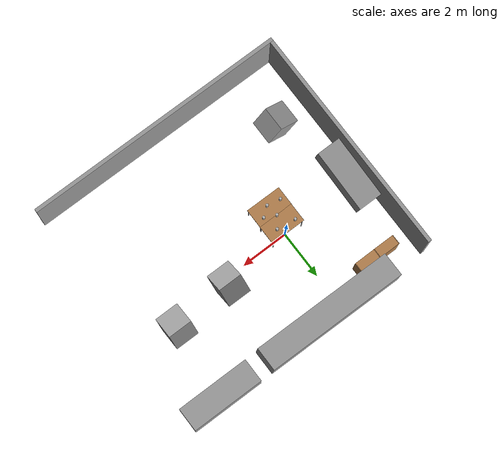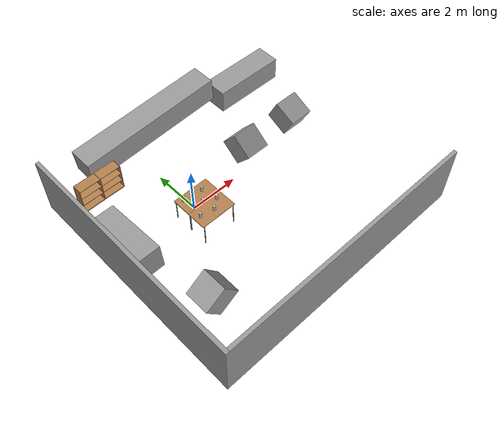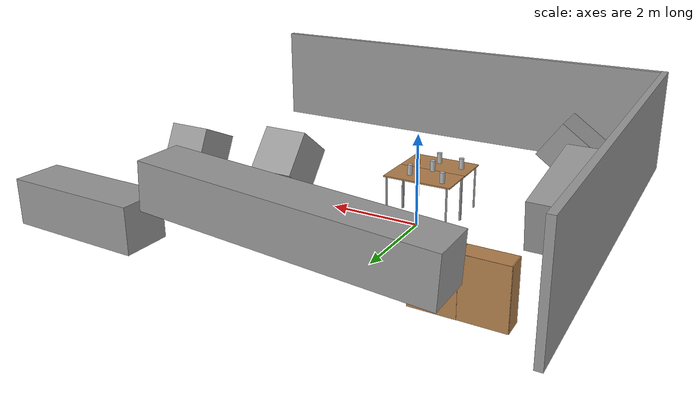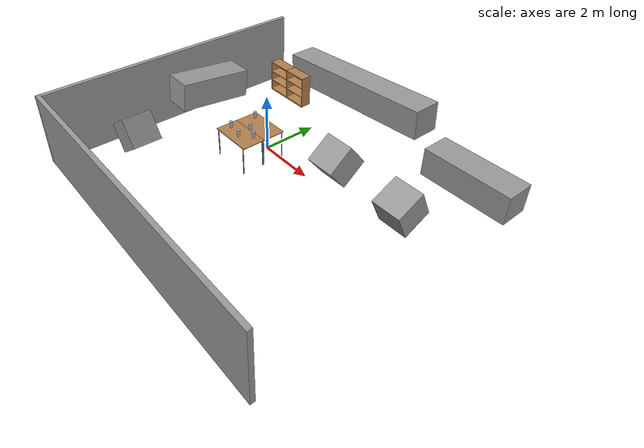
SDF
<sdf version="1.6">
 <world name="default">
  <plugin name="voxblox_ground_truth_plugin" filename="libvoxblox_ground_truth_plugin.so"/>
  <gravity>0 0 0</gravity>
  <magnetic_field>6e-06 2.3e-05 -4.2e-05</magnetic_field>
  <atmosphere type="adiabatic"/>
  <physics name="default_physics" default="0" type="ode">
   <max_step_size>0.001</max_step_size>
   <real_time_factor>1</real_time_factor>
   <real_time_update_rate>1000</real_time_update_rate>
  </physics>
  <scene><ambient>0.4 0.4 0.4 1</ambient><background>0.7 0.7 0.7 1</background><shadows>1</shadows></scene>
  <audio><device>default</device></audio>
  <spherical_coordinates>
   <surface_model>EARTH_WGS84</surface_model>
   <latitude_deg>0</latitude_deg>
   <longitude_deg>0</longitude_deg>
   <elevation>0</elevation>
   <heading_deg>0</heading_deg>
  </spherical_coordinates>
  <model name="table">
   <static>1</static>
   <link name="link">
    <collision name="surface">
     <pose>0 0 1 0 -0 0</pose>
     <geometry><box><size>1.5 0.8 0.03</size></box></geometry>
     <surface><friction><ode><mu>0.6</mu><mu2>0.6</mu2></ode></friction></surface>
    </collision>
    <visual name="visual1">
     <pose>0 0 1 0 -0 0</pose>
     <geometry><box><size>1.5 0.8 0.03</size></box></geometry>
     <material>
      <script><uri>file://media/materials/scripts/gazebo.material</uri><name>Gazebo/Wood</name></script>
     </material>
    </visual>
    <collision name="front_left_leg">
     <pose>0.68 0.38 0.5 0 -0 0</pose>
     <geometry><cylinder><radius>0.02</radius><length>1</length></cylinder></geometry>
    </collision>
    <visual name="front_left_leg">
     <pose>0.68 0.38 0.5 0 -0 0</pose>
     <geometry><cylinder><radius>0.02</radius><length>1</length></cylinder></geometry>
     <material>
      <script><uri>file://media/materials/scripts/gazebo.material</uri><name>Gazebo/Grey</name></script>
     </material>
    </visual>
    <collision name="front_right_leg">
     <pose>0.68 -0.38 0.5 0 -0 0</pose>
     <geometry><cylinder><radius>0.02</radius><length>1</length></cylinder></geometry>
    </collision>
    <visual name="front_right_leg">
     <pose>0.68 -0.38 0.5 0 -0 0</pose>
     <geometry><cylinder><radius>0.02</radius><length>1</length></cylinder></geometry>
     <material>
      <script><uri>file://media/materials/scripts/gazebo.material</uri><name>Gazebo/Grey</name></script>
     </material>
    </visual>
    <collision name="back_right_leg">
     <pose>-0.68 -0.38 0.5 0 -0 0</pose>
     <geometry><cylinder><radius>0.02</radius><length>1</length></cylinder></geometry>
    </collision>
    <visual name="back_right_leg">
     <pose>-0.68 -0.38 0.5 0 -0 0</pose>
     <geometry><cylinder><radius>0.02</radius><length>1</length></cylinder></geometry>
     <material>
      <script><uri>file://media/materials/scripts/gazebo.material</uri><name>Gazebo/Grey</name></script>
     </material>
    </visual>
    <collision name="back_left_leg">
     <pose>-0.68 0.38 0.5 0 -0 0</pose>
     <geometry><cylinder><radius>0.02</radius><length>1</length></cylinder></geometry>
    </collision>
    <visual name="back_left_leg">
     <pose>-0.68 0.38 0.5 0 -0 0</pose>
     <geometry><cylinder><radius>0.02</radius><length>1</length></cylinder></geometry>
     <material>
      <script><uri>file://media/materials/scripts/gazebo.material</uri><name>Gazebo/Grey</name></script>
     </material>
    </visual>
   </link>
   <pose>-0.022475 -0.28637 0 0 -0 0</pose>
  </model>
  <model name="table_0">
   <static>1</static>
   <link name="link">
    <collision name="surface">
     <pose>0 0 1 0 -0 0</pose>
     <geometry><box><size>1.5 0.8 0.03</size></box></geometry>
     <surface><friction><ode><mu>0.6</mu><mu2>0.6</mu2></ode></friction></surface>
    </collision>
    <visual name="visual1">
     <pose>0 0 1 0 -0 0</pose>
     <geometry><box><size>1.5 0.8 0.03</size></box></geometry>
     <material>
      <script><uri>file://media/materials/scripts/gazebo.material</uri><name>Gazebo/Wood</name></script>
     </material>
    </visual>
    <collision name="front_left_leg">
     <pose>0.68 0.38 0.5 0 -0 0</pose>
     <geometry><cylinder><radius>0.02</radius><length>1</length></cylinder></geometry>
    </collision>
    <visual name="front_left_leg">
     <pose>0.68 0.38 0.5 0 -0 0</pose>
     <geometry><cylinder><radius>0.02</radius><length>1</length></cylinder></geometry>
     <material>
      <script><uri>file://media/materials/scripts/gazebo.material</uri><name>Gazebo/Grey</name></script>
     </material>
    </visual>
    <collision name="front_right_leg">
     <pose>0.68 -0.38 0.5 0 -0 0</pose>
     <geometry><cylinder><radius>0.02</radius><length>1</length></cylinder></geometry>
    </collision>
    <visual name="front_right_leg">
     <pose>0.68 -0.38 0.5 0 -0 0</pose>
     <geometry><cylinder><radius>0.02</radius><length>1</length></cylinder></geometry>
     <material>
      <script><uri>file://media/materials/scripts/gazebo.material</uri><name>Gazebo/Grey</name></script>
     </material>
    </visual>
    <collision name="back_right_leg">
     <pose>-0.68 -0.38 0.5 0 -0 0</pose>
     <geometry><cylinder><radius>0.02</radius><length>1</length></cylinder></geometry>
    </collision>
    <visual name="back_right_leg">
     <pose>-0.68 -0.38 0.5 0 -0 0</pose>
     <geometry><cylinder><radius>0.02</radius><length>1</length></cylinder></geometry>
     <material>
      <script><uri>file://media/materials/scripts/gazebo.material</uri><name>Gazebo/Grey</name></script>
     </material>
    </visual>
    <collision name="back_left_leg">
     <pose>-0.68 0.38 0.5 0 -0 0</pose>
     <geometry><cylinder><radius>0.02</radius><length>1</length></cylinder></geometry>
    </collision>
    <visual name="back_left_leg">
     <pose>-0.68 0.38 0.5 0 -0 0</pose>
     <geometry><cylinder><radius>0.02</radius><length>1</length></cylinder></geometry>
     <material>
      <script><uri>file://media/materials/scripts/gazebo.material</uri><name>Gazebo/Grey</name></script>
     </material>
    </visual>
   </link>
   <pose>-0.027226 -1.07886 0 0 -0 0</pose>
  </model>
  <model name="beer">
   <link name="link">
    <pose>0 0 0.115 0 -0 0</pose>
    <inertial>
     <mass>0.39</mass>
     <inertia><ixx>0.00058</ixx><ixy>0</ixy><ixz>0</ixz><iyy>0.00058</iyy><iyz>0</iyz><izz>0.00019</izz></inertia>
    </inertial>
    <collision name="collision">
     <geometry><cylinder><radius>0.055</radius><length>0.23</length></cylinder></geometry>
    </collision>
    <visual name="visual">
     <geometry><cylinder><radius>0.055</radius><length>0.23</length></cylinder></geometry>
     <material>
      <script>
       <uri>model://beer/materials/scripts</uri>
       <uri>model://beer/materials/textures</uri>
       <name>Beer/Diffuse</name>
      </script>
     </material>
    </visual>
   </link>
   <pose>0.407013 -0.867822 1.015 1e-06 -2.7e-05 0.000756</pose>
  </model>
  <model name="beer_0">
   <link name="link">
    <pose>0 0 0.115 0 -0 0</pose>
    <inertial>
     <mass>0.39</mass>
     <inertia><ixx>0.00058</ixx><ixy>0</ixy><ixz>0</ixz><iyy>0.00058</iyy><iyz>0</iyz><izz>0.00019</izz></inertia>
    </inertial>
    <collision name="collision">
     <geometry><cylinder><radius>0.055</radius><length>0.23</length></cylinder></geometry>
    </collision>
    <visual name="visual">
     <geometry><cylinder><radius>0.055</radius><length>0.23</length></cylinder></geometry>
     <material>
      <script>
       <uri>model://beer/materials/scripts</uri>
       <uri>model://beer/materials/textures</uri>
       <name>Beer/Diffuse</name>
      </script>
     </material>
    </visual>
   </link>
   <pose>-0.514159 -0.100992 1.015 -1e-06 2.7e-05 0.000645</pose>
  </model>
  <model name="beer_1">
   <link name="link">
    <pose>0 0 0.115 0 -0 0</pose>
    <inertial>
     <mass>0.39</mass>
     <inertia><ixx>0.00058</ixx><ixy>0</ixy><ixz>0</ixz><iyy>0.00058</iyy><iyz>0</iyz><izz>0.00019</izz></inertia>
    </inertial>
    <collision name="collision">
     <geometry><cylinder><radius>0.055</radius><length>0.23</length></cylinder></geometry>
    </collision>
    <visual name="visual">
     <geometry><cylinder><radius>0.055</radius><length>0.23</length></cylinder></geometry>
     <material>
      <script>
       <uri>model://beer/materials/scripts</uri>
       <uri>model://beer/materials/textures</uri>
       <name>Beer/Diffuse</name>
      </script>
     </material>
    </visual>
   </link>
   <pose>-0.055439 -0.647999 1.015 -1.9e-05 -2e-06 0.000925</pose>
  </model>
  <model name="beer_2">
   <link name="link">
    <pose>0 0 0.115 0 -0 0</pose>
    <inertial>
     <mass>0.39</mass>
     <inertia><ixx>0.00058</ixx><ixy>0</ixy><ixz>0</ixz><iyy>0.00058</iyy><iyz>0</iyz><izz>0.00019</izz></inertia>
    </inertial>
    <collision name="collision">
     <geometry><cylinder><radius>0.055</radius><length>0.23</length></cylinder></geometry>
    </collision>
    <visual name="visual">
     <geometry><cylinder><radius>0.055</radius><length>0.23</length></cylinder></geometry>
     <material>
      <script>
       <uri>model://beer/materials/scripts</uri>
       <uri>model://beer/materials/textures</uri>
       <name>Beer/Diffuse</name>
      </script>
     </material>
    </visual>
   </link>
   <pose>0.017358 -1.1692 1.01499 -1e-06 2.7e-05 0.001081</pose>
  </model>
  <model name="bookshelf">
   <static>1</static>
   <link name="link">
    <inertial><mass>1</mass></inertial>
    <collision name="back">
     <pose>0 0.005 0.6 0 -0 0</pose>
     <geometry><box><size>0.9 0.01 1.2</size></box></geometry>
    </collision>
    <visual name="visual1">
     <pose>0 0.005 0.6 0 -0 0</pose>
     <geometry><box><size>0.9 0.01 1.2</size></box></geometry>
     <material>
      <script><uri>file://media/materials/scripts/gazebo.material</uri><name>Gazebo/Wood</name></script>
     </material>
    </visual>
    <collision name="left_side">
     <pose>0.45 -0.195 0.6 0 -0 0</pose>
     <geometry><box><size>0.02 0.4 1.2</size></box></geometry>
    </collision>
    <visual name="visual2">
     <pose>0.45 -0.195 0.6 0 -0 0</pose>
     <geometry><box><size>0.02 0.4 1.2</size></box></geometry>
     <material>
      <script><uri>file://media/materials/scripts/gazebo.material</uri><name>Gazebo/Wood</name></script>
     </material>
    </visual>
    <collision name="right_side">
     <pose>-0.45 -0.195 0.6 0 -0 0</pose>
     <geometry><box><size>0.02 0.4 1.2</size></box></geometry>
    </collision>
    <visual name="visual3">
     <pose>-0.45 -0.195 0.6 0 -0 0</pose>
     <geometry><box><size>0.02 0.4 1.2</size></box></geometry>
     <material>
      <script><uri>file://media/materials/scripts/gazebo.material</uri><name>Gazebo/Wood</name></script>
     </material>
    </visual>
    <collision name="bottom">
     <pose>0 -0.195 0.03 0 -0 0</pose>
     <geometry><box><size>0.88 0.4 0.06</size></box></geometry>
    </collision>
    <visual name="visual4">
     <pose>0 -0.195 0.03 0 -0 0</pose>
     <geometry><box><size>0.88 0.4 0.06</size></box></geometry>
     <material>
      <script><uri>file://media/materials/scripts/gazebo.material</uri><name>Gazebo/Wood</name></script>
     </material>
    </visual>
    <collision name="top">
     <pose>0 -0.195 1.19 0 -0 0</pose>
     <geometry><box><size>0.88 0.4 0.02</size></box></geometry>
    </collision>
    <visual name="visual5">
     <pose>0 -0.195 1.19 0 -0 0</pose>
     <geometry><box><size>0.88 0.4 0.02</size></box></geometry>
     <material>
      <script><uri>file://media/materials/scripts/gazebo.material</uri><name>Gazebo/Wood</name></script>
     </material>
    </visual>
    <collision name="low_shelf">
     <pose>0 -0.195 0.43 0 -0 0</pose>
     <geometry><box><size>0.88 0.4 0.02</size></box></geometry>
    </collision>
    <visual name="visual6">
     <pose>0 -0.195 0.43 0 -0 0</pose>
     <geometry><box><size>0.88 0.4 0.02</size></box></geometry>
     <material>
      <script><uri>file://media/materials/scripts/gazebo.material</uri><name>Gazebo/Wood</name></script>
     </material>
    </visual>
    <collision name="high_shelf">
     <pose>0 -0.195 0.8 0 -0 0</pose>
     <geometry><box><size>0.88 0.4 0.02</size></box></geometry>
    </collision>
    <visual name="visual7">
     <pose>0 -0.195 0.8 0 -0 0</pose>
     <geometry><box><size>0.88 0.4 0.02</size></box></geometry>
     <material>
      <script><uri>file://media/materials/scripts/gazebo.material</uri><name>Gazebo/Wood</name></script>
     </material>
    </visual>
   </link>
   <pose>-2.60688 3.00233 0 0 -0 0</pose>
  </model>
  <model name="bookshelf_0">
   <static>1</static>
   <link name="link">
    <inertial><mass>1</mass></inertial>
    <collision name="back">
     <pose>0 0.005 0.6 0 -0 0</pose>
     <geometry><box><size>0.9 0.01 1.2</size></box></geometry>
    </collision>
    <visual name="visual1">
     <pose>0 0.005 0.6 0 -0 0</pose>
     <geometry><box><size>0.9 0.01 1.2</size></box></geometry>
     <material>
      <script><uri>file://media/materials/scripts/gazebo.material</uri><name>Gazebo/Wood</name></script>
     </material>
    </visual>
    <collision name="left_side">
     <pose>0.45 -0.195 0.6 0 -0 0</pose>
     <geometry><box><size>0.02 0.4 1.2</size></box></geometry>
    </collision>
    <visual name="visual2">
     <pose>0.45 -0.195 0.6 0 -0 0</pose>
     <geometry><box><size>0.02 0.4 1.2</size></box></geometry>
     <material>
      <script><uri>file://media/materials/scripts/gazebo.material</uri><name>Gazebo/Wood</name></script>
     </material>
    </visual>
    <collision name="right_side">
     <pose>-0.45 -0.195 0.6 0 -0 0</pose>
     <geometry><box><size>0.02 0.4 1.2</size></box></geometry>
    </collision>
    <visual name="visual3">
     <pose>-0.45 -0.195 0.6 0 -0 0</pose>
     <geometry><box><size>0.02 0.4 1.2</size></box></geometry>
     <material>
      <script><uri>file://media/materials/scripts/gazebo.material</uri><name>Gazebo/Wood</name></script>
     </material>
    </visual>
    <collision name="bottom">
     <pose>0 -0.195 0.03 0 -0 0</pose>
     <geometry><box><size>0.88 0.4 0.06</size></box></geometry>
    </collision>
    <visual name="visual4">
     <pose>0 -0.195 0.03 0 -0 0</pose>
     <geometry><box><size>0.88 0.4 0.06</size></box></geometry>
     <material>
      <script><uri>file://media/materials/scripts/gazebo.material</uri><name>Gazebo/Wood</name></script>
     </material>
    </visual>
    <collision name="top">
     <pose>0 -0.195 1.19 0 -0 0</pose>
     <geometry><box><size>0.88 0.4 0.02</size></box></geometry>
    </collision>
    <visual name="visual5">
     <pose>0 -0.195 1.19 0 -0 0</pose>
     <geometry><box><size>0.88 0.4 0.02</size></box></geometry>
     <material>
      <script><uri>file://media/materials/scripts/gazebo.material</uri><name>Gazebo/Wood</name></script>
     </material>
    </visual>
    <collision name="low_shelf">
     <pose>0 -0.195 0.43 0 -0 0</pose>
     <geometry><box><size>0.88 0.4 0.02</size></box></geometry>
    </collision>
    <visual name="visual6">
     <pose>0 -0.195 0.43 0 -0 0</pose>
     <geometry><box><size>0.88 0.4 0.02</size></box></geometry>
     <material>
      <script><uri>file://media/materials/scripts/gazebo.material</uri><name>Gazebo/Wood</name></script>
     </material>
    </visual>
    <collision name="high_shelf">
     <pose>0 -0.195 0.8 0 -0 0</pose>
     <geometry><box><size>0.88 0.4 0.02</size></box></geometry>
    </collision>
    <visual name="visual7">
     <pose>0 -0.195 0.8 0 -0 0</pose>
     <geometry><box><size>0.88 0.4 0.02</size></box></geometry>
     <material>
      <script><uri>file://media/materials/scripts/gazebo.material</uri><name>Gazebo/Wood</name></script>
     </material>
    </visual>
   </link>
   <pose>-1.71696 3.00621 0 0 -0 0</pose>
  </model>
  <model name="Untitled_0">
   <pose>1.6624 -1.15253 0 0 -0 0</pose>
   <link name="Wall_2">
    <collision name="Wall_2_Collision">
     <geometry><box><size>9.75 0.15 2.5</size></box></geometry>
     <pose>0 0 1.25 0 -0 0</pose>
    </collision>
    <visual name="Wall_2_Visual">
     <pose>0 0 1.25 0 -0 0</pose>
     <geometry><box><size>9.75 0.15 2.5</size></box></geometry>
     <material>
      <script><uri>file://media/materials/scripts/gazebo.material</uri><name>Gazebo/Grey</name></script>
      <ambient>1 1 1 1</ambient>
     </material>
     <meta><layer>0</layer></meta>
    </visual>
    <pose>-5.425 0 0 0 -0 -1.5708</pose>
   </link>
   <link name="Wall_3">
    <collision name="Wall_3_Collision">
     <geometry><box><size>11 0.15 2.5</size></box></geometry>
     <pose>0 0 1.25 0 -0 0</pose>
    </collision>
    <visual name="Wall_3_Visual">
     <pose>0 0 1.25 0 -0 0</pose>
     <geometry><box><size>11 0.15 2.5</size></box></geometry>
     <material>
      <script><uri>file://media/materials/scripts/gazebo.material</uri><name>Gazebo/Grey</name></script>
      <ambient>1 1 1 1</ambient>
     </material>
     <meta><layer>0</layer></meta>
    </visual>
    <pose>0 -4.8 0 0 -0 0</pose>
   </link>
   <static>1</static>
  </model>
  <model name="beer_0_clone">
   <link name="link">
    <pose>0 0 0.115 0 -0 0</pose>
    <inertial>
     <mass>0.39</mass>
     <inertia><ixx>0.00058</ixx><ixy>0</ixy><ixz>0</ixz><iyy>0.00058</iyy><iyz>0</iyz><izz>0.00019</izz></inertia>
    </inertial>
    <collision name="collision">
     <geometry><cylinder><radius>0.055</radius><length>0.23</length></cylinder></geometry>
    </collision>
    <visual name="visual">
     <geometry><cylinder><radius>0.055</radius><length>0.23</length></cylinder></geometry>
     <material>
      <script>
       <uri>model://beer/materials/scripts</uri>
       <uri>model://beer/materials/textures</uri>
       <name>Beer/Diffuse</name>
      </script>
     </material>
    </visual>
   </link>
   <pose>0.268859 -0.20944 1.01499 1e-06 -2.7e-05 0.00015</pose>
  </model>
  <model name="beer_0_clone_0">
   <link name="link">
    <pose>0 0 0.115 0 -0 0</pose>
    <inertial>
     <mass>0.39</mass>
     <inertia><ixx>0.00058</ixx><ixy>0</ixy><ixz>0</ixz><iyy>0.00058</iyy><iyz>0</iyz><izz>0.00019</izz></inertia>
    </inertial>
    <collision name="collision">
     <geometry><cylinder><radius>0.055</radius><length>0.23</length></cylinder></geometry>
    </collision>
    <visual name="visual">
     <geometry><cylinder><radius>0.055</radius><length>0.23</length></cylinder></geometry>
     <material>
      <script>
       <uri>model://beer/materials/scripts</uri>
       <uri>model://beer/materials/textures</uri>
       <name>Beer/Diffuse</name>
      </script>
     </material>
    </visual>
   </link>
   <pose>-0.539522 -1.06596 1.01499 -1e-06 2.6e-05 0.000915</pose>
  </model>
  <model name="unit_box">
   <pose>0.710309 3.51794 1.36707 2.6e-05 -0.063904 -0.000696</pose>
   <link name="unit_box::link">
    <inertial>
     <mass>1</mass>
     <inertia>
      <ixx>0.166667</ixx>
      <ixy>0</ixy>
      <ixz>0</ixz>
      <iyy>0.166667</iyy>
      <iyz>0</iyz>
      <izz>0.166667</izz>
     </inertia>
    </inertial>
    <collision name="collision"><geometry><box><size>5.98898 1 1</size></box></geometry></collision>
    <visual name="visual">
     <geometry><box><size>5.98898 1 1</size></box></geometry>
     <material>
      <script><name>Gazebo/Grey</name><uri>file://media/materials/scripts/gazebo.material</uri></script>
     </material>
    </visual>
   </link>
  </model>
  <model name="unit_box_0">
   <pose>2.972 0.338069 1.06077 0.672898 -0.000242 -0.00016</pose>
   <link name="link">
    <inertial>
     <mass>1</mass>
     <inertia>
      <ixx>0.166667</ixx>
      <ixy>0</ixy>
      <ixz>0</ixz>
      <iyy>0.166667</iyy>
      <iyz>0</iyz>
      <izz>0.166667</izz>
     </inertia>
    </inertial>
    <collision name="collision"><geometry><box><size>1 1 1</size></box></geometry></collision>
    <visual name="visual">
     <geometry><box><size>1 1 1</size></box></geometry>
     <material>
      <script><name>Gazebo/Grey</name><uri>file://media/materials/scripts/gazebo.material</uri></script>
     </material>
    </visual>
   </link>
  </model>
  <model name="unit_box_1">
   <pose>-2.24189 -3.59704 1.01431 -0.000348 -0.617148 3.6e-05</pose>
   <link name="link">
    <inertial>
     <mass>1</mass>
     <inertia>
      <ixx>0.166667</ixx>
      <ixy>0</ixy>
      <ixz>0</ixz>
      <iyy>0.166667</iyy>
      <iyz>0</iyz>
      <izz>0.166667</izz>
     </inertia>
    </inertial>
    <collision name="collision"><geometry><box><size>1 1 1</size></box></geometry></collision>
    <visual name="visual">
     <geometry><box><size>1 1 1</size></box></geometry>
     <material>
      <script><name>Gazebo/Grey</name><uri>file://media/materials/scripts/gazebo.material</uri></script>
     </material>
    </visual>
   </link>
  </model>
  <model name="unit_box_2">
   <pose>-3.13139 -0.23395 1.14614 -0.111076 -0 -0</pose>
   <link name="link">
    <inertial>
     <mass>1</mass>
     <inertia>
      <ixx>0.166667</ixx>
      <ixy>0</ixy>
      <ixz>0</ixz>
      <iyy>0.166667</iyy>
      <iyz>0</iyz>
      <izz>0.166667</izz>
     </inertia>
    </inertial>
    <collision name="collision"><geometry><box><size>1 2.64568 1</size></box></geometry></collision>
    <visual name="visual">
     <geometry><box><size>1 2.64568 1</size></box></geometry>
     <material>
      <script><name>Gazebo/Grey</name><uri>file://media/materials/scripts/gazebo.material</uri></script>
     </material>
    </visual>
   </link>
  </model>
  <model name="unit_box_3">
   <pose>5.73354 3.48076 0.505296 0.007156 -0.000275 -0.000892</pose>
   <link name="link">
    <inertial>
     <mass>1</mass>
     <inertia>
      <ixx>0.166667</ixx>
      <ixy>0</ixy>
      <ixz>0</ixz>
      <iyy>0.166667</iyy>
      <iyz>0</iyz>
      <izz>0.166667</izz>
     </inertia>
    </inertial>
    <collision name="collision"><geometry><box><size>3.07036 1 1</size></box></geometry></collision>
    <visual name="visual">
     <geometry><box><size>3.07036 1 1</size></box></geometry>
     <material>
      <script><name>Gazebo/Grey</name><uri>file://media/materials/scripts/gazebo.material</uri></script>
     </material>
    </visual>
   </link>
  </model>
  <model name="unit_box_4">
   <pose>5.47956 0.439515 0.872173 0.446591 -0.000173 -8.9e-05</pose>
   <link name="link">
    <inertial>
     <mass>1</mass>
     <inertia>
      <ixx>0.166667</ixx>
      <ixy>0</ixy>
      <ixz>0</ixz>
      <iyy>0.166667</iyy>
      <iyz>0</iyz>
      <izz>0.166667</izz>
     </inertia>
    </inertial>
    <collision name="collision"><geometry><box><size>1 1 1</size></box></geometry></collision>
    <visual name="visual">
     <geometry><box><size>1 1 1</size></box></geometry>
     <material>
      <script><name>Gazebo/Grey</name><uri>file://media/materials/scripts/gazebo.material</uri></script>
     </material>
    </visual>
   </link>
  </model>
 </world>
</sdf>
